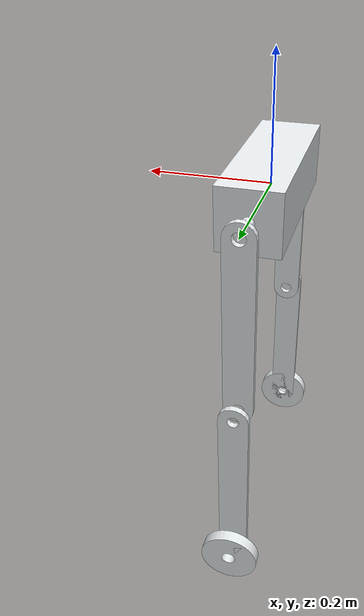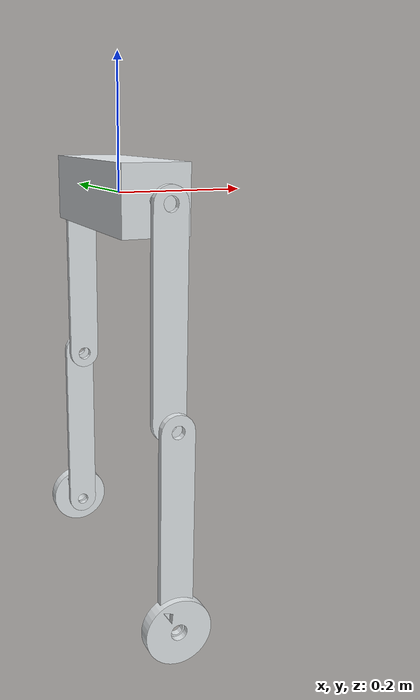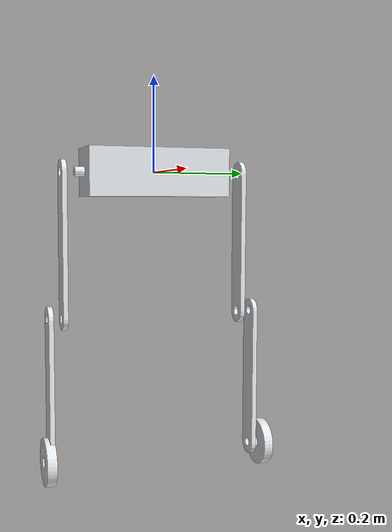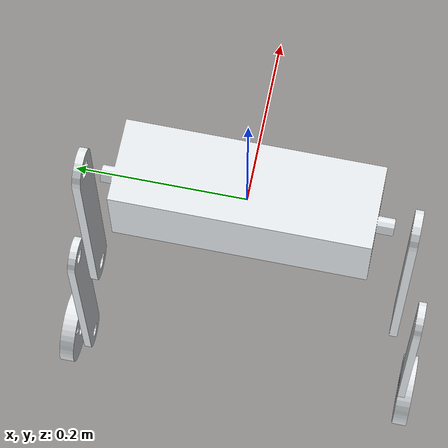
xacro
<?xml version="1.0" encoding="utf-8"?>

<!-- robotmodel2 文件，旨在仔细地审查惯量信息... ...  -->
<robot
  name="wbrtestpkg"  xmlns:xacro="http://wiki.ros.org/xacro">

  <link
    name="base_link">
    <inertial>
      <origin
        xyz="0 0 0"
        rpy="0 0 0" />
      <mass
        value="8.1339" />
      <inertia
        ixx="0.068371"
        ixy="0"
        ixz="0"
        iyy="0.013502"
        iyz="0"
        izz="0.068371" />
    </inertial>
    <visual>
      <origin
        xyz="0 0 0"
        rpy="0 0 0" />
      <geometry>
        <mesh
          filename="package://wbrtestpkg/meshes/base_link.STL" />
      </geometry>
      <material
        name="mt1">
        <color
          rgba="0.89804 0.91765 0.92941 1" />
      </material>
    </visual>
    <collision>
      <origin
        xyz="0 0 0"
        rpy="0 0 0" />
      <geometry>
        <mesh
          filename="package://wbrtestpkg/meshes/base_link.STL" />
      </geometry>
    </collision>
  </link>

  <link
    name="left_thigh">
    <inertial>
      <origin

        xyz="0.15 0 -0.005"
        rpy="0 0 0" />

      <!-- 根据上面的origin，似乎inertia是定义在质心位置上的... ... -->
      <mass
        value="0.43749" />
      <inertia
        ixx="0.00010"
        ixy="0"
        ixz="0"
        iyy="0.0039485"
        iyz="0"
        izz="0.0040369" />
    </inertial>
    <visual>
      <origin
        xyz="0 0 0"
        rpy="0 0 0" />
      <geometry>
        <mesh
          filename="package://wbrtestpkg/meshes/left_thigh.STL" />
      </geometry>
      <material
        name="mt1">
        <color
          rgba="0.89804 0.91765 0.92941 1" />
      </material>
    </visual>
    <collision>
      <origin
        xyz="0 0 0"
        rpy="0 0 0" />
      <geometry>
        <mesh
          filename="package://wbrtestpkg/meshes/left_thigh.STL" />
      </geometry>
    </collision>
  </link>

  <joint
    name="left_hip_joint"
    type="revolute">
    <origin
      xyz="0 0.2 0"
      rpy="-1.5708 1.5708 0" />
    <parent
      link="base_link" />
    <child
      link="left_thigh" />
    <axis
      xyz="0 0 1" />
    <limit
      lower="-3.14"
      upper="3.14"
      effort="50"
      velocity="50" />
  </joint>

  <link
    name="left_shank">
    <inertial>
      <origin
        xyz="0.15 0 0.005"
        rpy="0 0 0" />
      <mass
        value="0.44105" />
      <inertia
        ixx="0.00011"
        ixy="0"
        ixz="0"
        iyy="0.0040289"
        iyz="0"
        izz="0.0041175" />
    </inertial>
    <visual>
      <origin
        xyz="0 0 0"
        rpy="0 0 0" />
      <geometry>
        <mesh
          filename="package://wbrtestpkg/meshes/left_shank.STL" />
      </geometry>
      <material
        name="mt1">
        <color
          rgba="0.89804 0.91765 0.92941 1" />
      </material>
    </visual>
    <collision>
      <origin
        xyz="0 0 0"
        rpy="0 0 0" />
      <geometry>
        <mesh
          filename="package://wbrtestpkg/meshes/left_shank.STL" />
      </geometry>
    </collision>
  </link>

  <joint
    name="left_knee_joint"
    type="revolute">
    <origin
      xyz="0.3 0 0.02"
      rpy="0 0 0" />
    <parent
      link="left_thigh" />
    <child
      link="left_shank" />
    <axis
      xyz="0 0 1" />
    <limit
      lower="-3.14"
      upper="3.14"
      effort="50"
      velocity="50" />
  </joint>

  <link
    name="left_wheel">
    <inertial>
      <origin
        xyz="0.00049825 -0.00026472 0.01"
        rpy="0 0 0" />
      <mass
        value="0.39086" />
      <inertia
        ixx="0.00027537"
        ixy="-3.1007E-06"
        ixz="0"
        iyy="0.00027122"
        iyz="0"
        izz="0.00052053" />
    </inertial>
    <visual>
      <origin
        xyz="0 0 0"
        rpy="0 0 0" />
      <geometry>
        <mesh
          filename="package://wbrtestpkg/meshes/left_wheel.STL" />
      </geometry>
      <material
        name="mt1">
        <color
          rgba="0.89804 0.91765 0.92941 1" />
      </material>
    </visual>
    <collision>
      <origin
        xyz="0 0 0"
        rpy="0 0 0" />
      <geometry>
        <mesh
          filename="package://wbrtestpkg/meshes/left_wheel.STL" />
      </geometry>
    </collision>
  </link>

  <joint
    name="left_wheel_joint"
    type="continuous">
    <origin
      xyz="0.3 0 0.02"
      rpy="0 0 0" />
    <parent
      link="left_shank" />
    <child
      link="left_wheel" />
    <axis
      xyz="0 0 1" />
  </joint>

<!-- 下面是右腿的部分 -->

  <link
    name="right_thigh">
    <inertial>
      <origin
        xyz="0.15 0 0.005"
        rpy="0 0 0" />
      <mass
        value="0.43749" />
      <inertia
        ixx="0.00010"
        ixy="0"
        ixz="0"
        iyy="0.0039485"
        iyz="0"
        izz="0.0040369" />
    </inertial>
    <visual>
      <origin
        xyz="0 0 0"
        rpy="0 0 0" />
      <geometry>
        <mesh
          filename="package://wbrtestpkg/meshes/right_thigh.STL" />
      </geometry>
      <material
        name="mt1">
        <color
          rgba="0.89804 0.91765 0.92941 1" />
      </material>
    </visual>
    <collision>
      <origin
        xyz="0 0 0"
        rpy="0 0 0" />
      <geometry>
        <mesh
          filename="package://wbrtestpkg/meshes/right_thigh.STL" />
      </geometry>
    </collision>
  </link>

  <joint
    name="right_hip_joint"
    type="revolute">
    <origin
      xyz="0 -0.2 0"
      rpy="-1.5708 1.5708 0" />
    <parent
      link="base_link" />
    <child
      link="right_thigh" />
    <axis
      xyz="0 0 1" />
    <limit
      lower="-3.14"
      upper="3.14"
      effort="50"
      velocity="50" />
  </joint>

  <link
    name="right_shank">
    <inertial>
      <origin
        xyz="0.15 0 -0.005"
        rpy="0 0 0" />
      <mass
        value="0.44105" />
      <inertia
        ixx="0.00010"
        ixy="0"
        ixz="0"
        iyy="0.00403"
        iyz="0"
        izz="0.00412" />
    </inertial>
    <visual>
      <origin
        xyz="0 0 0"
        rpy="0 0 0" />
      <geometry>
        <mesh
          filename="package://wbrtestpkg/meshes/right_shank.STL" />
      </geometry>
      <material
        name="mt1">
        <color
          rgba="0.89804 0.91765 0.92941 1" />
      </material>
    </visual>
    <collision>
      <origin
        xyz="0 0 0"
        rpy="0 0 0" />
      <geometry>
        <mesh
          filename="package://wbrtestpkg/meshes/right_shank.STL" />
      </geometry>
    </collision>
  </link>

  <joint
    name="right_knee_joint"
    type="revolute">
    <origin
      xyz="0.3 0 -0.02"
      rpy="0 0 0" />
    <parent
      link="right_thigh" />
    <child
      link="right_shank" />
    <axis
      xyz="0 0 1" />
    <limit
      lower="-3.14"
      upper="3.14"
      effort="50"
      velocity="50" />
  </joint>

  <link
    name="right_wheel">
    <inertial>
      <origin
        xyz="0.00054909 0.00012975 -0.01"
        rpy="0 0 0" />
      <mass
        value="0.39086" />
      <inertia
        ixx="0.00027664"
        ixy="1.6581E-06"
        ixz="0"
        iyy="0.00026995"
        iyz="0"
        izz="0.00052053" />
    </inertial>
    <visual>
      <origin
        xyz="0 0 0"
        rpy="0 0 0" />
      <geometry>
        <mesh
          filename="package://wbrtestpkg/meshes/right_wheel.STL" />
      </geometry>
      <material
        name="mt1">
        <color
          rgba="0.89804 0.91765 0.92941 1" />
      </material>
    </visual>
    <collision>
      <origin
        xyz="0 0 0"
        rpy="0 0 0" />
      <geometry>
        <mesh
          filename="package://wbrtestpkg/meshes/right_wheel.STL" />
      </geometry>
    </collision>
  </link>

  <joint
    name="right_wheel_joint"
    type="continuous">
    <origin
      xyz="0.3 0 -0.02"
      rpy="0 0 0" />
    <parent
      link="right_shank" />
    <child
      link="right_wheel" />
    <axis
      xyz="0 0 1" />
  </joint>

</robot>
